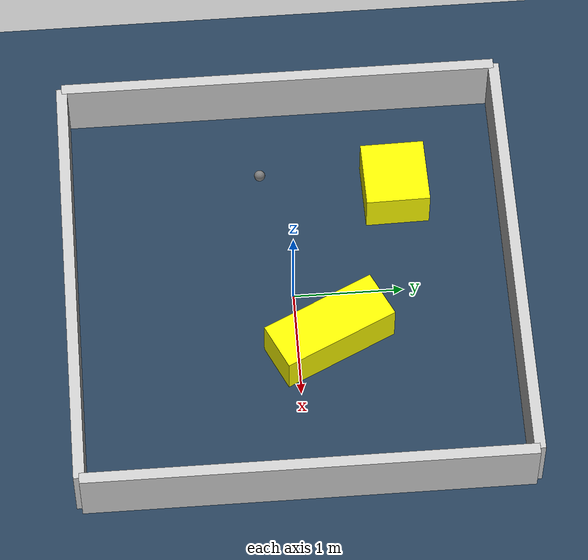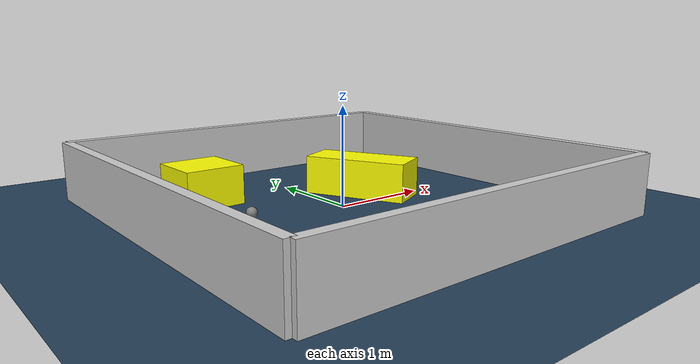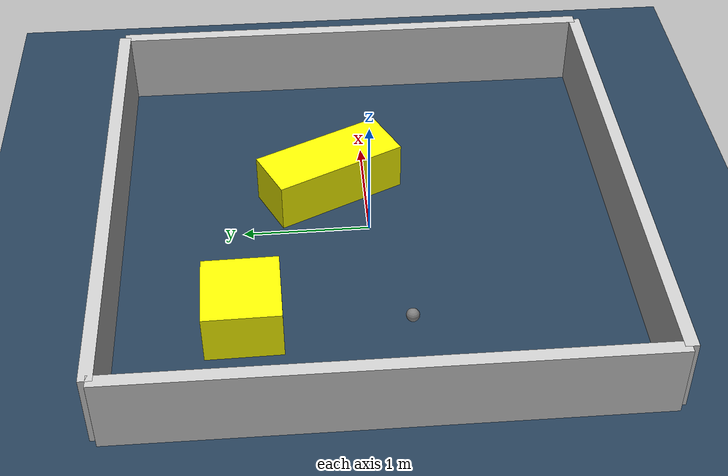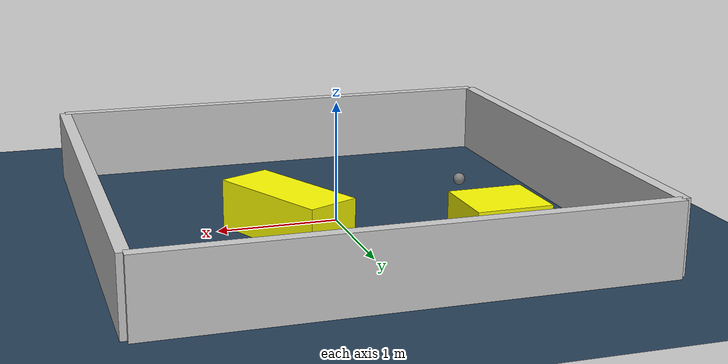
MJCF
<?xml version="1.0" ?>
<mujoco model="generated_environment">
  <option timestep="0.01" integrator="RK4" cone="elliptic"/>
  <default>
    <geom density="1"/>
  </default>
  <asset>
    <texture builtin="gradient" height="3072" rgb1="0.3 0.5 0.7" rgb2="0 0 0" type="skybox" width="512"/>
    <texture builtin="checker" height="300" mark="edge" markrgb="0.8 0.8 0.8" name="groundplane" rgb1="0.2 0.3 0.4" rgb2="0.1 0.2 0.3" type="2d" width="300"/>
    <material name="groundplane" reflectance="0.2" texrepeat="5 5" texture="groundplane" texuniform="true"/>
    <material name="robot" rgba="0.0 1.0 0.0 1"/>
  </asset>
  <worldbody>
    <light dir="0 0 -1" directional="true" pos="0 0 1.5"/>
    <geom condim="4" friction="1.0 0.005 0.001" material="groundplane" name="floor" size="0 0 0.05" type="plane"/>
    <body name="walls">
      <geom name="wall_1" condim="4" pos="-2.0 0.0 0.3" rgba="0.800000011920929 0.800000011920929 0.800000011920929 1.0" size="0.05 2.0 0.3" type="box"/>
      <geom name="wall_2" condim="4" pos="2.0 0.0 0.3" rgba="0.800000011920929 0.800000011920929 0.800000011920929 1.0" size="0.05 2.0 0.3" type="box"/>
      <geom name="wall_3" condim="4" pos="0.0 -2.0 0.3" rgba="0.800000011920929 0.800000011920929 0.800000011920929 1.0" size="2.0 0.05 0.3" type="box"/>
      <geom name="wall_4" condim="4" pos="0.0 2.0 0.3" rgba="0.800000011920929 0.800000011920929 0.800000011920929 1.0" size="2.0 0.05 0.3" type="box"/>
    </body>
    <body name="robot">
      <joint name="joint_x" type="slide" pos="0 0 0" axis="1 0 0"/>
      <joint name="joint_y" type="slide" pos="0 0 0" axis="0 1 0"/>
      <geom name="robot" type="sphere" pos="-1.1827791073738059 -0.22632948330466296 0.2" size="0.05" mass="5." friction="1.0 0.005 0.0001" condim="4"/>
      <site name="sensor_ball"/>
    </body>
    <body name="obstacle_1_movable">
      <geom name="obstacle_1_movable" condim="4" pos="-1.0124993515973557 1.0068785327652898 0.2" euler="0 0 1.0225656353230006" friction="1.0 0.005 0.001" rgba="1 1 0 1" size="0.3078805955466236 0.2905555787491634 0.2" type="box" mass="0.1"/>
      <joint type="free"/>
    </body>
    <body name="obstacle_2_movable">
      <geom name="obstacle_2_movable" condim="4" pos="0.49102106916730603 0.289228448789256 0.2" euler="0 0 115.63994475515241" friction="1.0 0.005 0.001" rgba="1 1 0 1" size="0.5472881843886854 0.22349867490234174 0.2" type="box" mass="0.1"/>
      <joint type="free"/>
    </body>
  </worldbody>
  <actuator>
    <motor name="actuator_x" joint="joint_x" gear="1" ctrlrange="-1 1"/>
    <motor name="actuator_y" joint="joint_y" gear="1" ctrlrange="-1 1"/>
  </actuator>
</mujoco>
